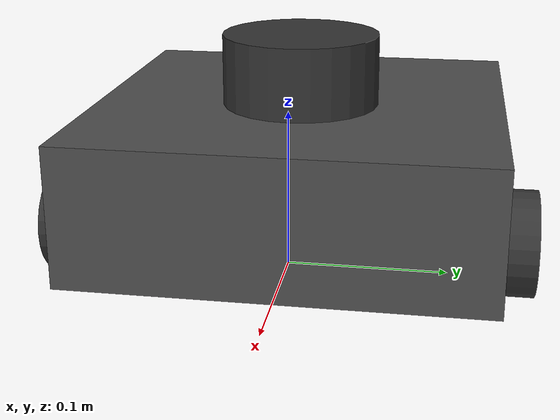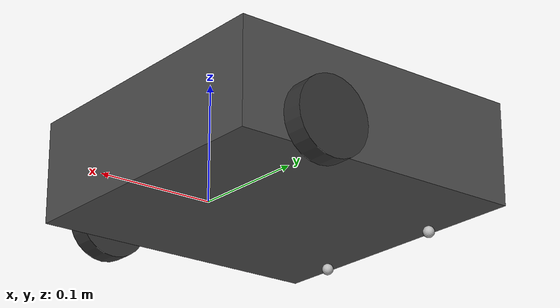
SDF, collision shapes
<?xml version="1.0" ?>
<sdf version="1.5">
  <model name="turtlebot3_waffle_pi">
  <pose>0.0 0.0 0.0 0.0 0.0 0.0</pose>

    <link name="base_footprint"/>

    <link name="base_link">

      <inertial>
        <pose>-0.064 0 0.048 0 0 0</pose>
        <inertia>
          <ixx>4.2111447e-02</ixx>
          <ixy>0</ixy>
          <ixz>0</ixz>
          <iyy>4.2111447e-02</iyy>
          <iyz>0</iyz>
          <izz>7.5254874e-02</izz>
        </inertia>
        <mass>1.3729096e+00</mass>
      </inertial>

      <collision name="base_collision">
        <pose>-0.064 0 0.048 0 0 0</pose>
        <geometry>
          <box>
            <size>0.265 0.265 0.089</size>
          </box>
        </geometry>
      </collision>

      <visual name="base_visual">
        <pose>-0.064 0 0 0 0 0</pose>
        <geometry>
          <mesh>
            <uri>model://turtlebot3_common/meshes/bases/waffle_pi_base.stl</uri>
            <scale>0.001 0.001 0.001</scale>
          </mesh>
        </geometry>
        <material>
          <ambient>0.3 0.3 0.3 1.0</ambient>
          <diffuse>0.3 0.3 0.3 1.0</diffuse>
        </material>
      </visual>
    </link>

    <link name="imu_link">
      <sensor name="tb3_imu" type="imu">
        <always_on>true</always_on>
        <update_rate>200</update_rate>
        <imu>
          <angular_velocity>
            <x>
              <noise type="gaussian">
                <mean>0.0</mean>
                <stddev>2e-4</stddev>
              </noise>
            </x>
            <y>
              <noise type="gaussian">
                <mean>0.0</mean>
                <stddev>2e-4</stddev>
              </noise>
            </y>
            <z>
              <noise type="gaussian">
                <mean>0.0</mean>
                <stddev>2e-4</stddev>
              </noise>
            </z>
          </angular_velocity>
          <linear_acceleration>
            <x>
              <noise type="gaussian">
                <mean>0.0</mean>
                <stddev>1.7e-2</stddev>
              </noise>
            </x>
            <y>
              <noise type="gaussian">
                <mean>0.0</mean>
                <stddev>1.7e-2</stddev>
              </noise>
            </y>
            <z>
              <noise type="gaussian">
                <mean>0.0</mean>
                <stddev>1.7e-2</stddev>
              </noise>
            </z>
          </linear_acceleration>
        </imu>
        <plugin name="turtlebot3_imu" filename="libgazebo_ros_imu_sensor.so">
          <ros>
            <remapping>~/out:=imu</remapping>
          </ros>
        </plugin>
      </sensor>
    </link>

    <link name="base_scan">
      <inertial>
        <pose>-0.052 0 0.111 0 0 0</pose>
        <inertia>
          <ixx>0.001</ixx>
          <ixy>0.000</ixy>
          <ixz>0.000</ixz>
          <iyy>0.001</iyy>
          <iyz>0.000</iyz>
          <izz>0.001</izz>
        </inertia>
        <mass>0.114</mass>
      </inertial>

      <collision name="lidar_sensor_collision">
        <pose>-0.052 0 0.111 0 0 0</pose>
        <geometry>
          <cylinder>
            <radius>0.0508</radius>
            <length>0.055</length>
          </cylinder>
        </geometry>
      </collision>

      <visual name="lidar_sensor_visual">
        <pose>-0.064 0 0.121 0 0 0</pose>
        <geometry>
          <mesh>
            <uri>model://turtlebot3_common/meshes/sensors/lds.stl</uri>
            <scale>0.001 0.001 0.001</scale>
          </mesh>
        </geometry>
        <material>
          <ambient>0.2 0.2 0.2 1.0</ambient>
          <diffuse>0.2 0.2 0.2 1.0</diffuse>
        </material>
      </visual>

      <sensor name="hls_lfcd_lds" type="ray">
        <always_on>true</always_on>
        <visualize>false</visualize>
        <pose>-0.064 0 0.121 0 0 0</pose>
        <update_rate>5</update_rate>
        <ray>
          <scan>
            <horizontal>
              <samples>360</samples>
              <resolution>1.000000</resolution>
              <min_angle>0.000000</min_angle>
              <max_angle>6.280000</max_angle>
            </horizontal>
          </scan>
          <range>
            <min>0.120000</min>
            <max>3.5</max>
            <resolution>0.015000</resolution>
          </range>
          <noise>
            <type>gaussian</type>
            <mean>0.0</mean>
            <stddev>0.01</stddev>
          </noise>
        </ray>
        <plugin name="turtlebot3_laserscan" filename="libgazebo_ros_ray_sensor.so">
          <ros>
            <remapping>~/out:=scan</remapping>
          </ros>
          <output_type>sensor_msgs/LaserScan</output_type>
          <frame_name>base_scan</frame_name>
        </plugin>
      </sensor>
    </link>

    <link name="wheel_left_link">

      <inertial>
        <pose>0.0 0.144 0.023 -1.57 0 0</pose>
        <inertia>
          <ixx>1.8158194e-03</ixx>
          <ixy>-9.3392e-12</ixy>
          <ixz>1.04909e-11</ixz>
          <iyy>3.2922126e-03</iyy>
          <iyz>5.75694e-11</iyz>
          <izz>1.8158194e-03</izz>
        </inertia>
        <mass>2.8498940e-02</mass>
      </inertial>

      <collision name="wheel_left_collision">
        <pose>0.0 0.144 0.023 -1.57 0 0</pose>
        <geometry>
          <cylinder>
            <radius>0.033</radius>
            <length>0.018</length>
          </cylinder>
        </geometry>
        <surface>
          <!-- This friction pamareter don't contain reliable data!! -->
          <friction>
            <ode>
              <mu>100000</mu>
              <mu2>100000</mu2>
              <fdir1>0 0 0</fdir1>
              <slip1>0.0</slip1>
              <slip2>0.0</slip2>
            </ode>
          </friction>
          <contact>
            <ode>
              <soft_cfm>0</soft_cfm>
              <soft_erp>0.2</soft_erp>
              <kp>1e+5</kp>
              <kd>1</kd>
              <max_vel>0.01</max_vel>
              <min_depth>0.001</min_depth>
            </ode>
          </contact>
        </surface>
      </collision>

      <visual name="wheel_left_visual">
        <pose>0.0 0.144 0.023 0 0 0</pose>
        <geometry>
          <mesh>
            <uri>model://turtlebot3_common/meshes/wheels/right_tire.stl</uri>
            <scale>0.001 0.001 0.001</scale>
          </mesh>
        </geometry>
        <material>
          <ambient>0.2 0.2 0.2 1.0</ambient>
          <diffuse>0.2 0.2 0.2 1.0</diffuse>
        </material>
      </visual>
    </link>

    <link name="wheel_right_link">

      <inertial>
        <pose>0.0 -0.144 0.023 -1.57 0 0</pose>
        <inertia>
          <ixx>1.8158194e-03</ixx>
          <ixy>-9.3392e-12</ixy>
          <ixz>1.04909e-11</ixz>
          <iyy>3.2922126e-03</iyy>
          <iyz>5.75694e-11</iyz>
          <izz>1.8158194e-03</izz>
        </inertia>
        <mass>2.8498940e-02</mass>
      </inertial>

      <collision name="wheel_right_collision">
        <pose>0.0 -0.144 0.023 -1.57 0 0</pose>
        <geometry>
          <cylinder>
            <radius>0.033</radius>
            <length>0.018</length>
          </cylinder>
        </geometry>
        <surface>
          <!-- This friction pamareter don't contain reliable data!! -->
          <friction>
            <ode>
              <mu>100000</mu>
              <mu2>100000</mu2>
              <fdir1>0 0 0</fdir1>
              <slip1>0.0</slip1>
              <slip2>0.0</slip2>
            </ode>
          </friction>
          <contact>
            <ode>
              <soft_cfm>0</soft_cfm>
              <soft_erp>0.2</soft_erp>
              <kp>1e+5</kp>
              <kd>1</kd>
              <max_vel>0.01</max_vel>
              <min_depth>0.001</min_depth>
            </ode>
          </contact>
        </surface>
      </collision>

      <visual name="wheel_right_visual">
        <pose>0.0 -0.144 0.023 0 0 0</pose>
        <geometry>
          <mesh>
            <uri>model://turtlebot3_common/meshes/wheels/left_tire.stl</uri>
            <scale>0.001 0.001 0.001</scale>
          </mesh>
        </geometry>
        <material>
          <ambient>0.2 0.2 0.2 1.0</ambient>
          <diffuse>0.2 0.2 0.2 1.0</diffuse>
        </material>
      </visual>
    </link>

    <link name='caster_back_right_link'>
      <pose>-0.177 -0.064 -0.004 -1.57 0 0</pose>
      <inertial>
        <mass>0.001</mass>
        <inertia>
          <ixx>0.00001</ixx>
          <ixy>0.000</ixy>
          <ixz>0.000</ixz>
          <iyy>0.00001</iyy>
          <iyz>0.000</iyz>
          <izz>0.00001</izz>
        </inertia>
      </inertial>
      <collision name='collision'>
        <geometry>
          <sphere>
            <radius>0.005000</radius>
          </sphere>
        </geometry>
        <surface>
          <contact>
            <ode>
              <soft_cfm>0</soft_cfm>
              <soft_erp>0.2</soft_erp>
              <kp>1e+5</kp>
              <kd>1</kd>
              <max_vel>0.01</max_vel>
              <min_depth>0.001</min_depth>
            </ode>
          </contact>
        </surface>
      </collision>
    </link>

    <link name='caster_back_left_link'>
      <pose>-0.177 0.064 -0.004 -1.57 0 0</pose>
      <inertial>
        <mass>0.001</mass>
        <inertia>
          <ixx>0.00001</ixx>
          <ixy>0.000</ixy>
          <ixz>0.000</ixz>
          <iyy>0.00001</iyy>
          <iyz>0.000</iyz>
          <izz>0.00001</izz>
        </inertia>
      </inertial>
      <collision name='collision'>
        <geometry>
          <sphere>
            <radius>0.005000</radius>
          </sphere>
        </geometry>
        <surface>
          <contact>
            <ode>
              <soft_cfm>0</soft_cfm>
              <soft_erp>0.2</soft_erp>
              <kp>1e+5</kp>
              <kd>1</kd>
              <max_vel>0.01</max_vel>
              <min_depth>0.001</min_depth>
            </ode>
          </contact>
        </surface>
      </collision>
    </link>

    <link name="camera_link_0"/>

    <link name="camera_rgb_optical_frame_0">
      <inertial>
        <pose>0.076 0.0 0.093 0 0 0</pose>
        <inertia>
          <ixx>0.001</ixx>
          <ixy>0.000</ixy>
          <ixz>0.000</ixz>
          <iyy>0.001</iyy>
          <iyz>0.000</iyz>
          <izz>0.001</izz>
        </inertia>
        <mass>0.035</mass>
      </inertial>

      <pose>0.076 0.0 0.093 0 0 0</pose>
      <sensor name="camera_0" type="camera">
        <always_on>true</always_on>
        <visualize>true</visualize>
        <update_rate>30</update_rate>
        <camera name="picam_0">
          <horizontal_fov>1.55334</horizontal_fov>
          <image>
              <width>640</width>
              <height>480</height>
              <format>R8G8B8</format>
          </image>
          <clip>
              <near>0.03</near>
              <far>100</far>
          </clip>
          <noise>
            <type>gaussian</type>
            <mean>0.0</mean>
            <stddev>0.007</stddev>
          </noise>
        </camera>
          <plugin name="camera_driver_0" filename="libgazebo_ros_camera.so">
            <ros>
            </ros>
          </plugin>
      </sensor>
    </link>

    <!-- CAM 1 -->
    <link name="camera_link_1"/>

    <link name="camera_rgb_optical_frame_1">
      <inertial>
        <pose>0.076 0.0 0.093 0 0 0.7</pose>
        <inertia>
          <ixx>0.001</ixx>
          <ixy>0.000</ixy>
          <ixz>0.000</ixz>
          <iyy>0.001</iyy>
          <iyz>0.000</iyz>
          <izz>0.001</izz>
        </inertia>
        <mass>0.035</mass>
      </inertial>

      <pose>0.076 0.0 0.093 0 0 0.7</pose>
      <sensor name="camera_1" type="camera">
        <always_on>true</always_on>
        <visualize>true</visualize>
        <update_rate>30</update_rate>
        <camera name="picam_1">
          <horizontal_fov>1.55334</horizontal_fov>
          <image>
              <width>640</width>
              <height>480</height>
              <format>R8G8B8</format>
          </image>
          <clip>
              <near>0.03</near>
              <far>100</far>
          </clip>
          <noise>
            <type>gaussian</type>
            <mean>0.0</mean>
            <stddev>0.007</stddev>
          </noise>
        </camera>
          <plugin name="camera_driver_1" filename="libgazebo_ros_camera.so">
            <ros>
            </ros>
          </plugin>
      </sensor>
    </link>

    <!-- CAM 2 -->
    <link name="camera_link_2"/>

    <link name="camera_rgb_optical_frame_2">
      <inertial>
        <pose>0.076 0.0 0.093 0 0 -0.7</pose>
        <inertia>
          <ixx>0.001</ixx>
          <ixy>0.000</ixy>
          <ixz>0.000</ixz>
          <iyy>0.001</iyy>
          <iyz>0.000</iyz>
          <izz>0.001</izz>
        </inertia>
        <mass>0.035</mass>
      </inertial>

      <pose>0.076 0.0 0.093 0 0 -0.7</pose>
      <sensor name="camera_2" type="camera">
        <always_on>true</always_on>
        <visualize>true</visualize>
        <update_rate>30</update_rate>
        <camera name="picam_2">
          <horizontal_fov>1.55334</horizontal_fov>
          <image>
              <width>640</width>
              <height>480</height>
              <format>R8G8B8</format>
          </image>
          <clip>
              <near>0.03</near>
              <far>100</far>
          </clip>
          <noise>
            <type>gaussian</type>
            <mean>0.0</mean>
            <stddev>0.007</stddev>
          </noise>
        </camera>
          <plugin name="camera_driver_2" filename="libgazebo_ros_camera.so">
            <ros>
            </ros>
          </plugin>
      </sensor>
    </link>

    <!-- velodyne -->
    <link name="velodyne">
      <inertial>
        <pose>-0.052 0 0.111 0 0 0</pose>
        <inertia>
          <ixx>1e-7</ixx>
          <ixy>0.000</ixy>
          <ixz>0.000</ixz>
          <iyy>1e-7</iyy>
          <iyz>0.000</iyz>
          <izz>1e-7</izz>
        </inertia>
        <mass>0.114</mass>
      </inertial>

      <collision name="velodyne_sensor_collision">
        <pose>-0.052 0 0.111 0 0 0</pose>
        <geometry>
          <cylinder>
            <radius>0.0508</radius>
            <length>0.055</length>
          </cylinder>
        </geometry>
      </collision>

      <visual name="velodyne_sensor_visual">
        <pose>-0.064 0 0.121 0 0 0</pose>
        <geometry>
          <mesh>
	          <uri>package://velodyne_description/meshes/VLP16_scan.dae</uri>
            <scale>0.001 0.001 0.001</scale>
          </mesh>
        </geometry>
      </visual>

      <sensor name="velodyne-VLP16" type="ray">
        <always_on>true</always_on>
        <visualize>false</visualize>
        <pose>-0.064 0 0.121 0 0 0</pose>
        <update_rate>10</update_rate>
        <ray>
          <scan>
            <horizontal>
              <samples>512</samples>
              <resolution>1.000000</resolution>
	            <min_angle>-3.141592653589793</min_angle>
              <max_angle>3.141592653589793</max_angle>
            </horizontal>
	          <vertical>
              <samples>64</samples>
              <resolution>1</resolution>
              <!-- 45 degrees -->
              <min_angle>-0.3926991</min_angle>
              <max_angle> 0.3926991</max_angle>
            </vertical>
          </scan>
          <range>
            <min>0.3</min>
            <max>10.0</max>
            <resolution>0.001</resolution>
          </range>
          <noise>
            <type>gaussian</type>
            <mean>0.0</mean>
            <stddev>0.00</stddev>
          </noise>
        </ray>
	      <plugin filename="libgazebo_ros_velodyne_laser.so" name="gazebo_ros_laser_controller">
          <ros>
            <namespace>/velodyne</namespace>
	          <remapping>~/out:=/velodyne_points</remapping>
          </ros>
          <output_type>sensor_msgs/PointCloud2</output_type>
          <frame_name>velodyne</frame_name>
	        <organize_cloud>False</organize_cloud>
          <min_range>0.3</min_range>
          <max_range>10.0</max_range>
          <gaussian_noise>0.008</gaussian_noise>
        </plugin>
      </sensor>
    </link>
    <!-- velodyne -->

    <joint name="base_joint" type="fixed">
      <parent>base_footprint</parent>
      <child>base_link</child>
      <pose>0.0 0.0 0.010 0 0 0</pose>
    </joint>

    <joint name="wheel_left_joint" type="revolute">
      <parent>base_link</parent>
      <child>wheel_left_link</child>
      <pose>0.0 0.144 0.023 -1.57 0 0</pose>
      <axis>
        <xyz>0 0 1</xyz>
      </axis>
    </joint>

    <joint name="wheel_right_joint" type="revolute">
      <parent>base_link</parent>
      <child>wheel_right_link</child>
      <pose>0.0 -0.144 0.023 -1.57 0 0</pose>
      <axis>
        <xyz>0 0 1</xyz>
      </axis>
    </joint>

    <joint name='caster_back_right_joint' type='ball'>
      <parent>base_link</parent>
      <child>caster_back_right_link</child>
    </joint>

    <joint name='caster_back_left_joint' type='ball'>
      <parent>base_link</parent>
      <child>caster_back_left_link</child>
    </joint>

    <joint name="imu_joint" type="fixed">
      <parent>base_link</parent>
      <child>imu_link</child>
      <pose>-0.032 0 0.068 0 0 0</pose>
      <axis>
        <xyz>0 0 1</xyz>
      </axis>
    </joint>

    <joint name="lidar_joint" type="fixed">
      <parent>base_link</parent>
      <child>base_scan</child>
      <pose>-0.064 0 0.121 0 0 0</pose>
      <axis>
        <xyz>0 0 1</xyz>
      </axis>
    </joint>

    <!-- CAM 0 -->
    <joint name="camera_joint_0" type="fixed">
      <parent>base_link</parent>
      <child>camera_link_0</child>
      <pose>0.073 -0.011 0.084 0 0 0</pose>
      <axis>
        <xyz>0 0 1</xyz>
      </axis>
    </joint>

    <joint name="camera_rgb_joint_0" type="fixed">
      <parent>camera_link_0</parent>
      <child>camera_rgb_optical_frame_0</child>
      <pose>0.003 0.011 0.009 0 0 0</pose>
      <axis>
        <xyz>0 0 1</xyz>
      </axis>
    </joint>

    <!-- CAM 1 -->
    <joint name="camera_joint_1" type="fixed">
      <parent>base_link</parent>
      <child>camera_link_1</child>
      <pose>0.073 -0.011 0.084 0 0 0.7</pose>
      <axis>
        <xyz>0 0 1</xyz>
      </axis>
    </joint>

    <joint name="camera_rgb_joint_1" type="fixed">
      <parent>camera_link_1</parent>
      <child>camera_rgb_optical_frame_1</child>
      <pose>0.003 0.011 0.009 0 0 0</pose>
      <axis>
        <xyz>0 0 1</xyz>
      </axis>
    </joint>

    <!-- CAM 2 -->
    <joint name="camera_joint_2" type="fixed">
      <parent>base_link</parent>
      <child>camera_link_2</child>
      <pose>0.073 -0.011 0.084 0 0 -0.7</pose>
      <axis>
        <xyz>0 0 1</xyz>
      </axis>
    </joint>

    <joint name="camera_rgb_joint_2" type="fixed">
      <parent>camera_link_2</parent>
      <child>camera_rgb_optical_frame_2</child>
      <pose>0.003 0.011 0.009 0 0 0</pose>
      <axis>
        <xyz>0 0 1</xyz>
      </axis>
    </joint>

    <joint name="velodyne_joint" type="fixed">
      <parent>base_link</parent>
      <child>velodyne</child>
      <pose>-0.064 0 0.121 0 0 0</pose>
      <axis>
        <xyz>0 0 1</xyz>
      </axis>
    </joint>

    <plugin name="turtlebot3_diff_drive" filename="libgazebo_ros_diff_drive.so">

      <ros>
      </ros>

      <update_rate>30</update_rate>

      <!-- wheels -->
      <left_joint>wheel_left_joint</left_joint>
      <right_joint>wheel_right_joint</right_joint>

      <!-- kinematics -->
      <wheel_separation>0.287</wheel_separation>
      <wheel_diameter>0.066</wheel_diameter>

      <!-- limits -->
      <max_wheel_torque>20</max_wheel_torque>
      <max_wheel_acceleration>1.0</max_wheel_acceleration>

      <command_topic>cmd_vel</command_topic>

      <!-- output -->
      <publish_odom>true</publish_odom>
      <publish_odom_tf>true</publish_odom_tf>
      <publish_wheel_tf>false</publish_wheel_tf>

      <odometry_topic>odom</odometry_topic>
      <odometry_frame>odom</odometry_frame>
      <robot_base_frame>base_footprint</robot_base_frame>

    </plugin>

    <plugin name="turtlebot3_joint_state" filename="libgazebo_ros_joint_state_publisher.so">
      <ros>
        <remapping>~/out:=joint_states</remapping>
      </ros>
      <update_rate>30</update_rate>
      <joint_name>wheel_left_joint</joint_name>
      <joint_name>wheel_right_joint</joint_name>
    </plugin>

  </model>
</sdf>
